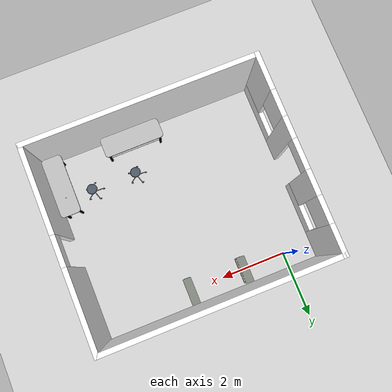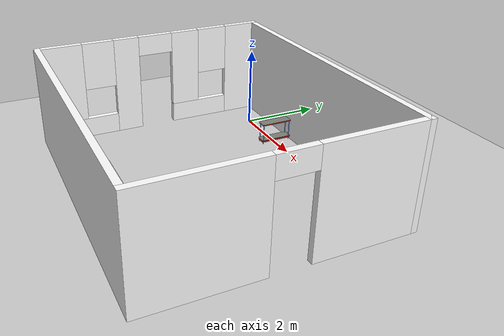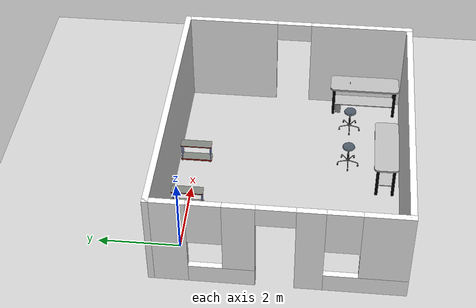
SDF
<sdf version="1.7">
 <world name="default">
  <light name="sun" type="directional">
   <pose>0 0 10 0 -0 0</pose>
   <diffuse>0.8 0.8 0.8 1</diffuse>
   <specular>0.2 0.2 0.2 1</specular>
   <attenuation>
    <range>1000</range>
    <constant>0.9</constant>
    <linear>0.01</linear>
    <quadratic>0.001</quadratic>
   </attenuation>
   <direction>-0.5 0.1 -0.9</direction>
   <spot><inner_angle>0</inner_angle><outer_angle>0</outer_angle><falloff>0</falloff></spot>
  </light>
  <model name="ground_plane">
   <static>1</static>
   <link name="link">
    <collision name="collision">
     <geometry><plane><normal>0 0 1</normal><size>100 100</size></plane></geometry>
     <surface><friction><ode><mu>100</mu><mu2>50</mu2></ode></friction></surface>
    </collision>
    <visual name="visual">
     <cast_shadows>0</cast_shadows>
     <geometry><plane><normal>0 0 1</normal><size>100 100</size></plane></geometry>
     <material>
      <script><uri>file://media/materials/scripts/gazebo.material</uri><name>Gazebo/Grey</name></script>
     </material>
    </visual>
   </link>
  </model>
  <gravity>0 0 -9.8</gravity>
  <magnetic_field>6e-06 2.3e-05 -4.2e-05</magnetic_field>
  <atmosphere type="adiabatic"/>
  <physics type="ode">
   <max_step_size>0.001</max_step_size>
   <real_time_factor>1</real_time_factor>
   <real_time_update_rate>1000</real_time_update_rate>
  </physics>
  <scene><ambient>0.4 0.4 0.4 1</ambient><background>0.7 0.7 0.7 1</background><shadows>1</shadows></scene>
  <spherical_coordinates>
   <surface_model>EARTH_WGS84</surface_model>
   <latitude_deg>0</latitude_deg>
   <longitude_deg>0</longitude_deg>
   <elevation>0</elevation>
   <heading_deg>0</heading_deg>
  </spherical_coordinates>
  <model name="room">
   <pose>2.45415 -2.72247 0 0 -0 0</pose>
   <link name="Wall_11">
    <collision name="Wall_11_Collision">
     <geometry><box><size>7 0.15 2.5</size></box></geometry>
     <pose>0 0 1.25 0 -0 0</pose>
    </collision>
    <visual name="Wall_11_Visual">
     <pose>0 0 1.25 0 -0 0</pose>
     <geometry><box><size>7 0.15 2.5</size></box></geometry>
     <material>
      <script>
       <uri>model://room/materials/scripts</uri>
       <uri>model://room/materials/textures</uri>
       <name>testing/material</name>
      </script>
      <ambient>1 1 1 1</ambient>
     </material>
     <meta><layer>0</layer></meta>
    </visual>
    <pose>-0 3.24692 0 0 -0 0</pose>
   </link>
   <link name="Wall_5">
    <pose>-3.425 0.321923 0 0 -0 -1.5708</pose>
    <visual name="Wall_5_Visual_0">
     <pose>-2.52329 0 1.25 0 -0 0</pose>
     <geometry><box><size>0.953415 0.15 2.5</size></box></geometry>
     <material>
      <script>
       <uri>model://room/materials/scripts</uri>
       <uri>model://room/materials/textures</uri>
       <name>testing/material</name>
      </script>
      <ambient>1 1 1 1</ambient>
     </material>
     <meta><layer>0</layer></meta>
    </visual>
    <collision name="Wall_5_Collision_0">
     <geometry><box><size>0.953415 0.15 2.5</size></box></geometry>
     <pose>-2.52329 0 1.25 0 -0 0</pose>
    </collision>
    <visual name="Wall_5_Visual_1">
     <pose>0.726172 0 1.25 0 -0 0</pose>
     <geometry><box><size>0.653489 0.15 2.5</size></box></geometry>
     <material>
      <script>
       <uri>model://room/materials/scripts</uri>
       <uri>model://room/materials/textures</uri>
       <name>testing/material</name>
      </script>
      <ambient>1 1 1 1</ambient>
     </material>
     <meta><layer>0</layer></meta>
    </visual>
    <collision name="Wall_5_Collision_1">
     <geometry><box><size>0.653489 0.15 2.5</size></box></geometry>
     <pose>0.726172 0 1.25 0 -0 0</pose>
    </collision>
    <visual name="Wall_5_Visual_2">
     <pose>-1.27358 0 0.25 0 -0 0</pose>
     <geometry><box><size>1.54601 0.15 0.5</size></box></geometry>
     <material>
      <script>
       <uri>model://room/materials/scripts</uri>
       <uri>model://room/materials/textures</uri>
       <name>testing/material</name>
      </script>
      <ambient>1 1 1 1</ambient>
     </material>
     <meta><layer>0</layer></meta>
    </visual>
    <collision name="Wall_5_Collision_2">
     <geometry><box><size>1.54601 0.15 0.5</size></box></geometry>
     <pose>-1.27358 0 0.25 0 -0 0</pose>
    </collision>
    <visual name="Wall_5_Visual_3">
     <pose>2.02646 0 0.25 0 -0 0</pose>
     <geometry><box><size>1.94708 0.15 0.5</size></box></geometry>
     <material>
      <script>
       <uri>model://room/materials/scripts</uri>
       <uri>model://room/materials/textures</uri>
       <name>testing/material</name>
      </script>
      <ambient>1 1 1 1</ambient>
     </material>
     <meta><layer>0</layer></meta>
    </visual>
    <collision name="Wall_5_Collision_3">
     <geometry><box><size>1.94708 0.15 0.5</size></box></geometry>
     <pose>2.02646 0 0.25 0 -0 0</pose>
    </collision>
    <visual name="Wall_5_Visual_4">
     <pose>-0.873579 0 1.5 0 -0 0</pose>
     <geometry><box><size>0.746012 0.15 2</size></box></geometry>
     <material>
      <script>
       <uri>model://room/materials/scripts</uri>
       <uri>model://room/materials/textures</uri>
       <name>testing/material</name>
      </script>
      <ambient>1 1 1 1</ambient>
     </material>
     <meta><layer>0</layer></meta>
    </visual>
    <collision name="Wall_5_Collision_4">
     <geometry><box><size>0.746012 0.15 2</size></box></geometry>
     <pose>-0.873579 0 1.5 0 -0 0</pose>
    </collision>
    <visual name="Wall_5_Visual_5">
     <pose>-0.873579 0 1.5 0 -0 0</pose>
     <geometry><box><size>0.746012 0.15 2</size></box></geometry>
     <material>
      <script>
       <uri>model://room/materials/scripts</uri>
       <uri>model://room/materials/textures</uri>
       <name>testing/material</name>
      </script>
      <ambient>1 1 1 1</ambient>
     </material>
     <meta><layer>0</layer></meta>
    </visual>
    <collision name="Wall_5_Collision_5">
     <geometry><box><size>0.746012 0.15 2</size></box></geometry>
     <pose>-0.873579 0 1.5 0 -0 0</pose>
    </collision>
    <visual name="Wall_5_Visual_6">
     <pose>2.42646 0 1.5 0 -0 0</pose>
     <geometry><box><size>1.14708 0.15 2</size></box></geometry>
     <material>
      <script>
       <uri>model://room/materials/scripts</uri>
       <uri>model://room/materials/textures</uri>
       <name>testing/material</name>
      </script>
      <ambient>1 1 1 1</ambient>
     </material>
     <meta><layer>0</layer></meta>
    </visual>
    <collision name="Wall_5_Collision_6">
     <geometry><box><size>1.14708 0.15 2</size></box></geometry>
     <pose>2.42646 0 1.5 0 -0 0</pose>
    </collision>
    <visual name="Wall_5_Visual_7">
     <pose>-1.64658 0 1.9 0 -0 0</pose>
     <geometry><box><size>0.8 0.15 1.2</size></box></geometry>
     <material>
      <script>
       <uri>model://room/materials/scripts</uri>
       <uri>model://room/materials/textures</uri>
       <name>testing/material</name>
      </script>
      <ambient>1 1 1 1</ambient>
     </material>
     <meta><layer>0</layer></meta>
    </visual>
    <collision name="Wall_5_Collision_7">
     <geometry><box><size>0.8 0.15 1.2</size></box></geometry>
     <pose>-1.64658 0 1.9 0 -0 0</pose>
    </collision>
    <visual name="Wall_5_Visual_8">
     <pose>1.45292 0 1.9 0 -0 0</pose>
     <geometry><box><size>0.8 0.15 1.2</size></box></geometry>
     <material>
      <script>
       <uri>model://room/materials/scripts</uri>
       <uri>model://room/materials/textures</uri>
       <name>testing/material</name>
      </script>
      <ambient>1 1 1 1</ambient>
     </material>
     <meta><layer>0</layer></meta>
    </visual>
    <collision name="Wall_5_Collision_8">
     <geometry><box><size>0.8 0.15 1.2</size></box></geometry>
     <pose>1.45292 0 1.9 0 -0 0</pose>
    </collision>
    <visual name="Wall_5_Visual_9">
     <pose>-0.050573 0 2.25 0 -0 0</pose>
     <geometry><box><size>0.9 0.15 0.5</size></box></geometry>
     <material>
      <script>
       <uri>model://room/materials/scripts</uri>
       <uri>model://room/materials/textures</uri>
       <name>testing/material</name>
      </script>
      <ambient>1 1 1 1</ambient>
     </material>
     <meta><layer>0</layer></meta>
    </visual>
    <collision name="Wall_5_Collision_9">
     <geometry><box><size>0.9 0.15 0.5</size></box></geometry>
     <pose>-0.050573 0 2.25 0 -0 0</pose>
    </collision>
    <visual name="Wall_5_Visual_10">
     <pose>-0.050573 0 2.25 0 -0 0</pose>
     <geometry><box><size>0.9 0.15 0.5</size></box></geometry>
     <material>
      <script>
       <uri>model://room/materials/scripts</uri>
       <uri>model://room/materials/textures</uri>
       <name>testing/material</name>
      </script>
      <ambient>1 1 1 1</ambient>
     </material>
     <meta><layer>0</layer></meta>
    </visual>
    <collision name="Wall_5_Collision_10">
     <geometry><box><size>0.9 0.15 0.5</size></box></geometry>
     <pose>-0.050573 0 2.25 0 -0 0</pose>
    </collision>
   </link>
   <link name="Wall_7">
    <collision name="Wall_7_Collision">
     <geometry><box><size>7 0.15 2.5</size></box></geometry>
     <pose>0 0 1.25 0 -0 0</pose>
    </collision>
    <visual name="Wall_7_Visual">
     <pose>0 0 1.25 0 -0 0</pose>
     <geometry><box><size>7 0.15 2.5</size></box></geometry>
     <material>
      <script>
       <uri>model://room/materials/scripts</uri>
       <uri>model://room/materials/textures</uri>
       <name>testing/material</name>
      </script>
      <ambient>1 1 1 1</ambient>
     </material>
     <meta><layer>0</layer></meta>
    </visual>
    <pose>-0 -2.60308 0 0 -0 0</pose>
   </link>
   <link name="Wall_9">
    <pose>3.425 0.321923 0 0 -0 1.5708</pose>
    <visual name="Wall_9_Visual_0">
     <pose>-1.67971 0 1.25 0 -0 0</pose>
     <geometry><box><size>2.64057 0.15 2.5</size></box></geometry>
     <material>
      <script>
       <uri>model://room/materials/scripts</uri>
       <uri>model://room/materials/textures</uri>
       <name>testing/material</name>
      </script>
      <ambient>1 1 1 1</ambient>
     </material>
     <meta><layer>0</layer></meta>
    </visual>
    <collision name="Wall_9_Collision_0">
     <geometry><box><size>2.64057 0.15 2.5</size></box></geometry>
     <pose>-1.67971 0 1.25 0 -0 0</pose>
    </collision>
    <visual name="Wall_9_Visual_1">
     <pose>1.77029 0 1.25 0 -0 0</pose>
     <geometry><box><size>2.45943 0.15 2.5</size></box></geometry>
     <material>
      <script>
       <uri>model://room/materials/scripts</uri>
       <uri>model://room/materials/textures</uri>
       <name>testing/material</name>
      </script>
      <ambient>1 1 1 1</ambient>
     </material>
     <meta><layer>0</layer></meta>
    </visual>
    <collision name="Wall_9_Collision_1">
     <geometry><box><size>2.45943 0.15 2.5</size></box></geometry>
     <pose>1.77029 0 1.25 0 -0 0</pose>
    </collision>
    <visual name="Wall_9_Visual_2">
     <pose>0.090573 0 2.25 0 -0 0</pose>
     <geometry><box><size>0.9 0.15 0.5</size></box></geometry>
     <material>
      <script>
       <uri>model://room/materials/scripts</uri>
       <uri>model://room/materials/textures</uri>
       <name>testing/material</name>
      </script>
      <ambient>1 1 1 1</ambient>
     </material>
     <meta><layer>0</layer></meta>
    </visual>
    <collision name="Wall_9_Collision_2">
     <geometry><box><size>0.9 0.15 0.5</size></box></geometry>
     <pose>0.090573 0 2.25 0 -0 0</pose>
    </collision>
   </link>
   <static>1</static>
  </model>
  <model name="stool1">
   <pose>2.7 -3 0 0 -0 0</pose>
   <static>1</static>
   <link name="body">
    <visual name="visual"><geometry><mesh><uri>file://stool_v2.dae</uri></mesh></geometry></visual>
    <collision name="collision"><geometry><mesh><uri>file://stool_v2.dae</uri></mesh></geometry></collision>
   </link>
  </model>
  <model name="stool2">
   <pose>1.3 -3 0 0 -0 0</pose>
   <static>1</static>
   <link name="body">
    <visual name="visual"><geometry><mesh><uri>file://stool_v2.dae</uri></mesh></geometry></visual>
    <collision name="collision"><geometry><mesh><uri>file://stool_v2.dae</uri></mesh></geometry></collision>
   </link>
  </model>
  <model name="table1">
   <pose>5.1 -2.75 0 0 0 -1.57</pose>
   <static>1</static>
   <link name="body">
    <visual name="visual"><geometry><mesh><uri>file://table_v2.dae</uri></mesh></geometry></visual>
    <collision name="collision"><geometry><mesh><uri>file://table_v2.dae</uri></mesh></geometry></collision>
   </link>
  </model>
  <model name="table2">
   <pose>1.5 -5.25 0 0 -0 0</pose>
   <static>1</static>
   <link name="body">
    <visual name="visual"><geometry><mesh><uri>file://table_v2.dae</uri></mesh></geometry></visual>
    <collision name="collision"><geometry><mesh><uri>file://table_v2.dae</uri></mesh></geometry></collision>
   </link>
  </model>
  <model name="shelf1">
   <pose>3.2 0 0.3 0 -0 1.57</pose>
   <static>1</static>
   <link name="body">
    <visual name="visual"><geometry><mesh><uri>file://shelf_v2.dae</uri></mesh></geometry></visual>
    <collision name="collision"><geometry><mesh><uri>file://shelf_v2.dae</uri></mesh></geometry></collision>
   </link>
  </model>
  <model name="shelf2">
   <pose>1.5 0 0.3 0 -0 1.57</pose>
   <static>1</static>
   <link name="body">
    <visual name="visual"><geometry><mesh><uri>file://shelf_v2.dae</uri></mesh></geometry></visual>
    <collision name="collision"><geometry><mesh><uri>file://shelf_v2.dae</uri></mesh></geometry></collision>
   </link>
  </model>
  <model name="demo_cube">
   <static>0</static>
   <link name="link">
    <inertial>
     <mass>0.25</mass>
     <inertia><ixx>0.00015</ixx><ixy>0</ixy><ixz>0</ixz><iyy>0.00015</iyy><iyz>0</iyz><izz>0.00015</izz></inertia>
    </inertial>
    <collision name="collision">
     <geometry><box><size>0.017552 0.016656 0.06</size></box></geometry>
     <surface>
      <friction><ode><mu>30</mu><mu2>30</mu2></ode></friction>
      <contact><ode><kp>1e+06</kp><kd>100</kd><max_vel>1</max_vel><min_depth>0.002</min_depth></ode></contact>
     </surface>
    </collision>
    <visual name="visual">
     <geometry><box><size>0.017552 0.016656 0.06</size></box></geometry>
     <material>
      <script><uri>file://media/materials/scripts/gazebo.material</uri><name>Gazebo/Blue</name></script>
     </material>
    </visual>
    <velocity_decay><linear>0</linear><angular>0</angular></velocity_decay>
   </link>
   <pose>5.45544 -3.87953 0.942399 0 0 -8.8e-05</pose>
  </model>
  <light name="user_point_light_tv" type="point">
   <pose>3.11758 -4.19042 0.87357 0 0.142524 -1.56168</pose>
   <diffuse>0.2 0.2 0.2 1</diffuse>
   <specular>0.1 0.1 0.1 1</specular>
   <attenuation>
    <range>10</range>
    <constant>0.5</constant>
    <linear>0.01</linear>
    <quadratic>0.001</quadratic>
   </attenuation>
   <cast_shadows>0</cast_shadows>
   <direction>0 0 -1</direction>
   <spot><inner_angle>0</inner_angle><outer_angle>0</outer_angle><falloff>0</falloff></spot>
  </light>
  <light name="user_point_light_0" type="point">
   <pose>7.1 0 3 0 -0 0</pose>
   <diffuse>0.2 0.2 0.2 1</diffuse>
   <specular>0.1 0.1 0.1 1</specular>
   <attenuation>
    <range>10</range>
    <constant>0.5</constant>
    <linear>0.01</linear>
    <quadratic>0.001</quadratic>
   </attenuation>
   <cast_shadows>0</cast_shadows>
   <direction>0 0 -1</direction>
   <spot><inner_angle>0</inner_angle><outer_angle>0</outer_angle><falloff>0</falloff></spot>
  </light>
  <light name="user_point_light_1" type="point">
   <pose>-7.1 0 3 0 -0 0</pose>
   <diffuse>0.2 0.2 0.2 1</diffuse>
   <specular>0.1 0.1 0.1 1</specular>
   <attenuation>
    <range>10</range>
    <constant>0.5</constant>
    <linear>0.01</linear>
    <quadratic>0.001</quadratic>
   </attenuation>
   <cast_shadows>0</cast_shadows>
   <direction>0 0 -1</direction>
   <spot><inner_angle>0</inner_angle><outer_angle>0</outer_angle><falloff>0</falloff></spot>
  </light>
  <model name="unit_box">
   <pose>5.47485 -3.58934 0.141478 -3e-06 -5e-06 2.6e-05</pose>
   <link name="link">
    <inertial>
     <mass>1</mass>
     <inertia>
      <ixx>0.166667</ixx>
      <ixy>0</ixy>
      <ixz>0</ixz>
      <iyy>0.166667</iyy>
      <iyz>0</iyz>
      <izz>0.166667</izz>
     </inertia>
    </inertial>
    <collision name="collision">
     <geometry><box><size>0.315506 0.146481 0.282957</size></box></geometry>
    </collision>
    <visual name="visual">
     <geometry><box><size>0.315506 0.146481 0.282957</size></box></geometry>
     <material>
      <script><name>Gazebo/Grey</name><uri>file://media/materials/scripts/gazebo.material</uri></script>
     </material>
    </visual>
   </link>
  </model>
 </world>
</sdf>
